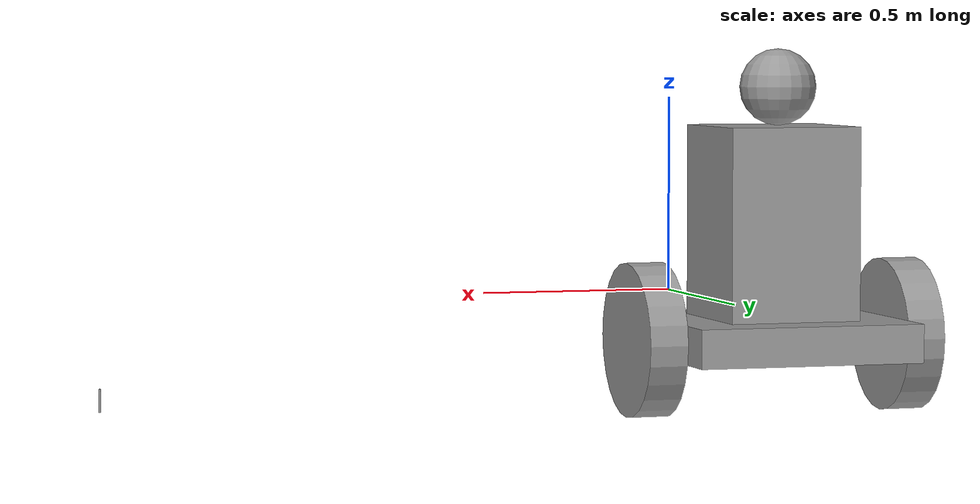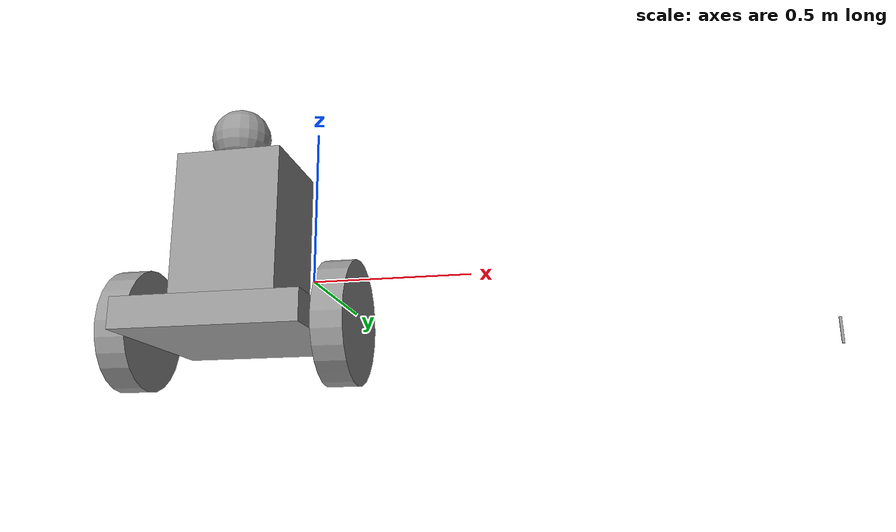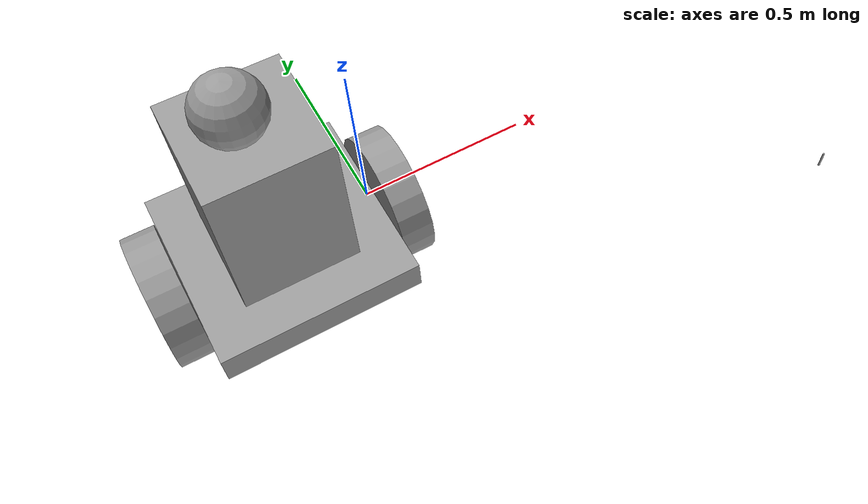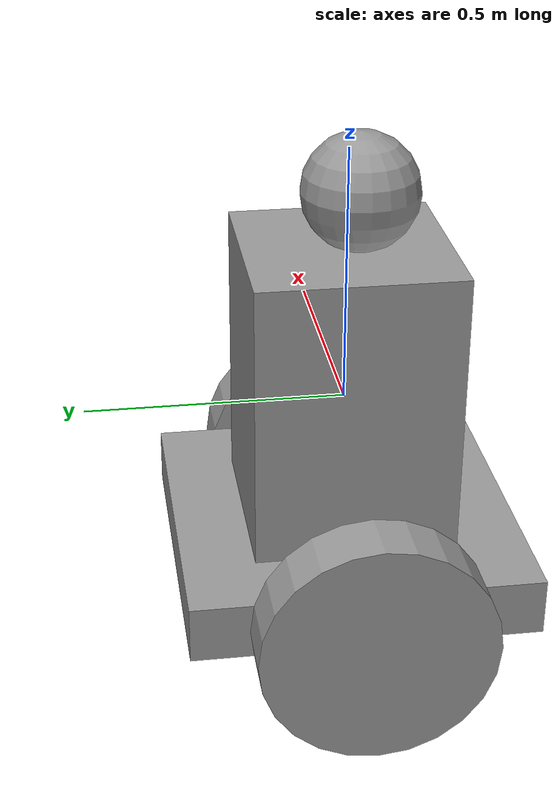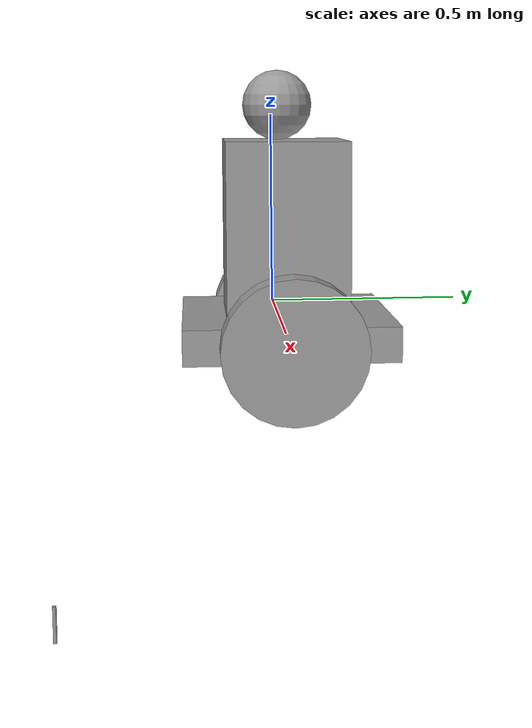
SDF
<?xml version='1.0'?>
<sdf version='1.6'>
  <model name='serviceRobot'>
    <link name='link_1'>
      <pose frame=''>-0.266493 0.05477 -0.125 0 -0 0</pose>
      <inertial>
        <mass>1</mass>
        <inertia>
          <ixx>0.166667</ixx>
          <ixy>0</ixy>
          <ixz>0</ixz>
          <iyy>0.166667</iyy>
          <iyz>0</iyz>
          <izz>0.166667</izz>
        </inertia>
        <pose frame=''>0 0 0 0 -0 0</pose>
      </inertial>
      <gravity>1</gravity>
      <self_collide>0</self_collide>
      <kinematic>0</kinematic>
      <visual name='visual'>
        <pose frame=''>0 0 0 0 -0 0</pose>
        <geometry>
          <box>
            <size>0.6 0.6 0.1</size>
          </box>
        </geometry>
        <material>
          <lighting>1</lighting>
          <script>
            <uri>file://media/materials/scripts/gazebo.material</uri>
            <name>Gazebo/Grey</name>
          </script>
          <shader type='pixel'>
            <normal_map>__default__</normal_map>
          </shader>
          <ambient>0.3 0.3 0.3 1</ambient>
          <diffuse>0.7 0.7 0.7 1</diffuse>
          <specular>0.01 0.01 0.01 1</specular>
          <emissive>0 0 0 1</emissive>
        </material>
        <transparency>0</transparency>
        <cast_shadows>1</cast_shadows>
      </visual>
      <collision name='collision'>
        <laser_retro>0</laser_retro>
        <max_contacts>10</max_contacts>
        <pose frame=''>0 0 0 0 -0 0</pose>
        <geometry>
          <box>
            <size>0.6 0.6 0.1</size>
          </box>
        </geometry>
        <surface>
          <friction>
            <ode>
              <mu>1</mu>
              <mu2>1</mu2>
              <fdir1>0 0 0</fdir1>
              <slip1>0</slip1>
              <slip2>0</slip2>
            </ode>
            <torsional>
              <coefficient>1</coefficient>
              <patch_radius>0</patch_radius>
              <surface_radius>0</surface_radius>
              <use_patch_radius>1</use_patch_radius>
              <ode>
                <slip>0</slip>
              </ode>
            </torsional>
          </friction>
          <bounce>
            <restitution_coefficient>0</restitution_coefficient>
            <threshold>1e+06</threshold>
          </bounce>
          <contact>
            <collide_without_contact>0</collide_without_contact>
            <collide_without_contact_bitmask>1</collide_without_contact_bitmask>
            <collide_bitmask>1</collide_bitmask>
            <ode>
              <soft_cfm>0</soft_cfm>
              <soft_erp>0.2</soft_erp>
              <kp>1e+13</kp>
              <kd>1</kd>
              <max_vel>0.01</max_vel>
              <min_depth>0</min_depth>
            </ode>
            <bullet>
              <split_impulse>1</split_impulse>
              <split_impulse_penetration_threshold>-0.01</split_impulse_penetration_threshold>
              <soft_cfm>0</soft_cfm>
              <soft_erp>0.2</soft_erp>
              <kp>1e+13</kp>
              <kd>1</kd>
            </bullet>
          </contact>
        </surface>
      </collision>
    </link>
    <link name='link_2'>
      <pose frame=''>0.084348 0.05477 -0.125 3.14159 1.56659 3.14159</pose>
      <inertial>
        <mass>1</mass>
        <inertia>
          <ixx>0.145833</ixx>
          <ixy>0</ixy>
          <ixz>0</ixz>
          <iyy>0.145833</iyy>
          <iyz>0</iyz>
          <izz>0.125</izz>
        </inertia>
        <pose frame=''>0 0 0 0 -0 0</pose>
      </inertial>
      <gravity>1</gravity>
      <self_collide>0</self_collide>
      <kinematic>0</kinematic>
      <visual name='visual'>
        <pose frame=''>0 0 0 0 -0 0</pose>
        <geometry>
          <cylinder>
            <radius>0.2</radius>
            <length>0.1</length>
          </cylinder>
        </geometry>
        <material>
          <lighting>1</lighting>
          <script>
            <uri>file://media/materials/scripts/gazebo.material</uri>
            <name>Gazebo/Grey</name>
          </script>
          <shader type='pixel'>
            <normal_map>__default__</normal_map>
          </shader>
          <ambient>0.3 0.3 0.3 1</ambient>
          <diffuse>0.7 0.7 0.7 1</diffuse>
          <specular>0.01 0.01 0.01 1</specular>
          <emissive>0 0 0 1</emissive>
        </material>
        <transparency>0</transparency>
        <cast_shadows>1</cast_shadows>
      </visual>
      <collision name='collision'>
        <laser_retro>0</laser_retro>
        <max_contacts>10</max_contacts>
        <pose frame=''>0 0 0 0 -0 0</pose>
        <geometry>
          <cylinder>
            <radius>0.2</radius>
            <length>0.1</length>
          </cylinder>
        </geometry>
        <surface>
          <friction>
            <ode>
              <mu>1</mu>
              <mu2>1</mu2>
              <fdir1>0 0 0</fdir1>
              <slip1>0</slip1>
              <slip2>0</slip2>
            </ode>
            <torsional>
              <coefficient>1</coefficient>
              <patch_radius>0</patch_radius>
              <surface_radius>0</surface_radius>
              <use_patch_radius>1</use_patch_radius>
              <ode>
                <slip>0</slip>
              </ode>
            </torsional>
          </friction>
          <bounce>
            <restitution_coefficient>0</restitution_coefficient>
            <threshold>1e+06</threshold>
          </bounce>
          <contact>
            <collide_without_contact>0</collide_without_contact>
            <collide_without_contact_bitmask>1</collide_without_contact_bitmask>
            <collide_bitmask>1</collide_bitmask>
            <ode>
              <soft_cfm>0</soft_cfm>
              <soft_erp>0.2</soft_erp>
              <kp>1e+13</kp>
              <kd>1</kd>
              <max_vel>0.01</max_vel>
              <min_depth>0</min_depth>
            </ode>
            <bullet>
              <split_impulse>1</split_impulse>
              <split_impulse_penetration_threshold>-0.01</split_impulse_penetration_threshold>
              <soft_cfm>0</soft_cfm>
              <soft_erp>0.2</soft_erp>
              <kp>1e+13</kp>
              <kd>1</kd>
            </bullet>
          </contact>
        </surface>
      </collision>
    </link>
    <link name='link_2_clone'>
      <pose frame=''>-0.617334 0.05477 -0.125 3.14159 1.56659 3.14159</pose>
      <inertial>
        <mass>1</mass>
        <inertia>
          <ixx>0.145833</ixx>
          <ixy>0</ixy>
          <ixz>0</ixz>
          <iyy>0.145833</iyy>
          <iyz>0</iyz>
          <izz>0.125</izz>
        </inertia>
        <pose frame=''>0 0 0 0 -0 0</pose>
      </inertial>
      <self_collide>0</self_collide>
      <kinematic>0</kinematic>
      <visual name='visual'>
        <pose frame=''>0 0 0 0 -0 0</pose>
        <geometry>
          <cylinder>
            <radius>0.2</radius>
            <length>0.1</length>
          </cylinder>
        </geometry>
        <material>
          <lighting>1</lighting>
          <script>
            <uri>file://media/materials/scripts/gazebo.material</uri>
            <name>Gazebo/Grey</name>
          </script>
          <shader type='pixel'>
            <normal_map>__default__</normal_map>
          </shader>
          <ambient>0.3 0.3 0.3 1</ambient>
          <diffuse>0.7 0.7 0.7 1</diffuse>
          <specular>0.01 0.01 0.01 1</specular>
          <emissive>0 0 0 1</emissive>
        </material>
        <transparency>0</transparency>
        <cast_shadows>1</cast_shadows>
      </visual>
      <collision name='collision'>
        <laser_retro>0</laser_retro>
        <max_contacts>10</max_contacts>
        <pose frame=''>0 0 0 0 -0 0</pose>
        <geometry>
          <cylinder>
            <radius>0.2</radius>
            <length>0.1</length>
          </cylinder>
        </geometry>
        <surface>
          <friction>
            <ode>
              <mu>1</mu>
              <mu2>1</mu2>
              <fdir1>0 0 0</fdir1>
              <slip1>0</slip1>
              <slip2>0</slip2>
            </ode>
            <torsional>
              <coefficient>1</coefficient>
              <patch_radius>0</patch_radius>
              <surface_radius>0</surface_radius>
              <use_patch_radius>1</use_patch_radius>
              <ode>
                <slip>0</slip>
              </ode>
            </torsional>
          </friction>
          <bounce>
            <restitution_coefficient>0</restitution_coefficient>
            <threshold>1e+06</threshold>
          </bounce>
          <contact>
            <collide_without_contact>0</collide_without_contact>
            <collide_without_contact_bitmask>1</collide_without_contact_bitmask>
            <collide_bitmask>1</collide_bitmask>
            <ode>
              <soft_cfm>0</soft_cfm>
              <soft_erp>0.2</soft_erp>
              <kp>1e+13</kp>
              <kd>1</kd>
              <max_vel>0.01</max_vel>
              <min_depth>0</min_depth>
            </ode>
            <bullet>
              <split_impulse>1</split_impulse>
              <split_impulse_penetration_threshold>-0.01</split_impulse_penetration_threshold>
              <soft_cfm>0</soft_cfm>
              <soft_erp>0.2</soft_erp>
              <kp>1e+13</kp>
              <kd>1</kd>
            </bullet>
          </contact>
        </surface>
      </collision>
    </link>
    <link name='link_3'>
      <pose frame=''>-0.266493 0.05477 0.175 0 -0 0</pose>
      <inertial>
        <mass>1</mass>
        <inertia>
          <ixx>0.166667</ixx>
          <ixy>0</ixy>
          <ixz>0</ixz>
          <iyy>0.166667</iyy>
          <iyz>0</iyz>
          <izz>0.166667</izz>
        </inertia>
        <pose frame=''>0 0 0 0 -0 0</pose>
      </inertial>
      <gravity>1</gravity>
      <self_collide>0</self_collide>
      <kinematic>0</kinematic>
      <visual name='visual'>
        <pose frame=''>0 0 0 0 -0 0</pose>
        <geometry>
          <box>
            <size>0.35 0.35 0.5</size>
          </box>
        </geometry>
        <material>
          <lighting>1</lighting>
          <script>
            <uri>file://media/materials/scripts/gazebo.material</uri>
            <name>Gazebo/Grey</name>
          </script>
          <shader type='pixel'>
            <normal_map>__default__</normal_map>
          </shader>
          <ambient>0.3 0.3 0.3 1</ambient>
          <diffuse>0.7 0.7 0.7 1</diffuse>
          <specular>0.01 0.01 0.01 1</specular>
          <emissive>0 0 0 1</emissive>
        </material>
        <transparency>0</transparency>
        <cast_shadows>1</cast_shadows>
      </visual>
      <collision name='collision'>
        <laser_retro>0</laser_retro>
        <max_contacts>10</max_contacts>
        <pose frame=''>0 0 0 0 -0 0</pose>
        <geometry>
          <box>
            <size>0.35 0.35 0.5</size>
          </box>
        </geometry>
        <surface>
          <friction>
            <ode>
              <mu>1</mu>
              <mu2>1</mu2>
              <fdir1>0 0 0</fdir1>
              <slip1>0</slip1>
              <slip2>0</slip2>
            </ode>
            <torsional>
              <coefficient>1</coefficient>
              <patch_radius>0</patch_radius>
              <surface_radius>0</surface_radius>
              <use_patch_radius>1</use_patch_radius>
              <ode>
                <slip>0</slip>
              </ode>
            </torsional>
          </friction>
          <bounce>
            <restitution_coefficient>0</restitution_coefficient>
            <threshold>1e+06</threshold>
          </bounce>
          <contact>
            <collide_without_contact>0</collide_without_contact>
            <collide_without_contact_bitmask>1</collide_without_contact_bitmask>
            <collide_bitmask>1</collide_bitmask>
            <ode>
              <soft_cfm>0</soft_cfm>
              <soft_erp>0.2</soft_erp>
              <kp>1e+13</kp>
              <kd>1</kd>
              <max_vel>0.01</max_vel>
              <min_depth>0</min_depth>
            </ode>
            <bullet>
              <split_impulse>1</split_impulse>
              <split_impulse_penetration_threshold>-0.01</split_impulse_penetration_threshold>
              <soft_cfm>0</soft_cfm>
              <soft_erp>0.2</soft_erp>
              <kp>1e+13</kp>
              <kd>1</kd>
            </bullet>
          </contact>
        </surface>
      </collision>
    </link>
    <link name='link_4'>
      <pose frame=''>-0.286493 0.03477 0.525 0 -0 0</pose>
      <inertial>
        <mass>1</mass>
        <inertia>
          <ixx>0.1</ixx>
          <ixy>0</ixy>
          <ixz>0</ixz>
          <iyy>0.1</iyy>
          <iyz>0</iyz>
          <izz>0.1</izz>
        </inertia>
        <pose frame=''>0 0 0 0 -0 0</pose>
      </inertial>
      <gravity>1</gravity>
      <self_collide>0</self_collide>
      <kinematic>0</kinematic>
      <visual name='visual'>
        <pose frame=''>0 0 0 0 -0 0</pose>
        <geometry>
          <sphere>
            <radius>0.1</radius>
          </sphere>
        </geometry>
        <material>
          <lighting>1</lighting>
          <script>
            <uri>file://media/materials/scripts/gazebo.material</uri>
            <name>Gazebo/Grey</name>
          </script>
          <shader type='pixel'>
            <normal_map>__default__</normal_map>
          </shader>
          <ambient>0.3 0.3 0.3 1</ambient>
          <diffuse>0.7 0.7 0.7 1</diffuse>
          <specular>0.01 0.01 0.01 1</specular>
          <emissive>0 0 0 1</emissive>
        </material>
        <transparency>0</transparency>
        <cast_shadows>1</cast_shadows>
      </visual>
      <collision name='collision'>
        <laser_retro>0</laser_retro>
        <max_contacts>10</max_contacts>
        <pose frame=''>0 0 0 0 -0 0</pose>
        <geometry>
          <sphere>
            <radius>0.1</radius>
          </sphere>
        </geometry>
        <surface>
          <friction>
            <ode>
              <mu>1</mu>
              <mu2>1</mu2>
              <fdir1>0 0 0</fdir1>
              <slip1>0</slip1>
              <slip2>0</slip2>
            </ode>
            <torsional>
              <coefficient>1</coefficient>
              <patch_radius>0</patch_radius>
              <surface_radius>0</surface_radius>
              <use_patch_radius>1</use_patch_radius>
              <ode>
                <slip>0</slip>
              </ode>
            </torsional>
          </friction>
          <bounce>
            <restitution_coefficient>0</restitution_coefficient>
            <threshold>1e+06</threshold>
          </bounce>
          <contact>
            <collide_without_contact>0</collide_without_contact>
            <collide_without_contact_bitmask>1</collide_without_contact_bitmask>
            <collide_bitmask>1</collide_bitmask>
            <ode>
              <soft_cfm>0</soft_cfm>
              <soft_erp>0.2</soft_erp>
              <kp>1e+13</kp>
              <kd>1</kd>
              <max_vel>0.01</max_vel>
              <min_depth>0</min_depth>
            </ode>
            <bullet>
              <split_impulse>1</split_impulse>
              <split_impulse_penetration_threshold>-0.01</split_impulse_penetration_threshold>
              <soft_cfm>0</soft_cfm>
              <soft_erp>0.2</soft_erp>
              <kp>1e+13</kp>
              <kd>1</kd>
            </bullet>
          </contact>
        </surface>
      </collision>
    </link>
    <model name='metal_peg'>
      <link name='link'>
        <pose frame=''>0 0 0.031 0 -0 0</pose>
        <inertial>
          <mass>0.0121</mass>
          <inertia>
            <ixx>3.90898e-06</ixx>
            <ixy>0</ixy>
            <ixz>0</ixz>
            <iyy>3.90898e-06</iyy>
            <iyz>0</iyz>
            <izz>6.58845e-08</izz>
          </inertia>
        </inertial>
        <collision name='collision'>
          <geometry>
            <cylinder>
              <radius>0.0033</radius>
              <length>0.062</length>
            </cylinder>
          </geometry>
          <surface>
            <contact>
              <poissons_ratio>0.305</poissons_ratio>
              <elastic_modulus>2e+11</elastic_modulus>
              <ode>
                <kp>100000</kp>
                <kd>100</kd>
                <max_vel>100</max_vel>
                <min_depth>0.001</min_depth>
              </ode>
            </contact>
            <friction>
              <torsional>
                <coefficient>1</coefficient>
                <use_patch_radius>0</use_patch_radius>
                <surface_radius>0.01</surface_radius>
              </torsional>
            </friction>
          </surface>
        </collision>
        <visual name='visual'>
          <geometry>
            <cylinder>
              <radius>0.0033</radius>
              <length>0.062</length>
            </cylinder>
          </geometry>
          <material>
            <script>
              <uri>file://media/materials/scripts/gazebo.material</uri>
              <name>Gazebo/Grey</name>
            </script>
          </material>
        </visual>
      </link>
      <pose frame=''>1.41901 -0.439429 -0.325 0 -0 0</pose>
    </model>
    <joint name='link_1_JOINT_0' type='revolute'>
      <parent>link_1</parent>
      <child>link_2_clone</child>
      <pose frame=''>0 0 0 0 -0 0</pose>
      <axis>
        <xyz>0 0 1</xyz>
        <use_parent_model_frame>0</use_parent_model_frame>
        <limit>
          <lower>-1.79769e+308</lower>
          <upper>1.79769e+308</upper>
          <effort>-1</effort>
          <velocity>-1</velocity>
        </limit>
        <dynamics>
          <spring_reference>0</spring_reference>
          <spring_stiffness>0</spring_stiffness>
          <damping>0</damping>
        </dynamics>
      </axis>
      <physics>
        <ode>
          <limit>
            <cfm>0</cfm>
            <erp>0.2</erp>
          </limit>
          <suspension>
            <cfm>0</cfm>
            <erp>0.2</erp>
          </suspension>
        </ode>
      </physics>
    </joint>
    <joint name='link_1_JOINT_1' type='revolute'>
      <parent>link_1</parent>
      <child>link_2</child>
      <pose frame=''>0 0 0 0 -0 0</pose>
      <axis>
        <xyz>0 0 1</xyz>
        <use_parent_model_frame>0</use_parent_model_frame>
        <limit>
          <lower>-1.79769e+308</lower>
          <upper>1.79769e+308</upper>
          <effort>-1</effort>
          <velocity>-1</velocity>
        </limit>
        <dynamics>
          <spring_reference>0</spring_reference>
          <spring_stiffness>0</spring_stiffness>
          <damping>0</damping>
        </dynamics>
      </axis>
      <physics>
        <ode>
          <limit>
            <cfm>0</cfm>
            <erp>0.2</erp>
          </limit>
          <suspension>
            <cfm>0</cfm>
            <erp>0.2</erp>
          </suspension>
        </ode>
      </physics>
    </joint>
    <joint name='link_1_JOINT_2' type='fixed'>
      <parent>link_1</parent>
      <child>link_3</child>
      <pose frame=''>0 0 0 0 -0 0</pose>
      <physics>
        <ode>
          <limit>
            <cfm>0</cfm>
            <erp>0.2</erp>
          </limit>
          <suspension>
            <cfm>0</cfm>
            <erp>0.2</erp>
          </suspension>
        </ode>
      </physics>
    </joint>
    <joint name='link_3_JOINT_3' type='fixed'>
      <parent>link_3</parent>
      <child>link_4</child>
      <pose frame=''>0 0 0 0 -0 0</pose>
      <physics>
        <ode>
          <limit>
            <cfm>0</cfm>
            <erp>0.2</erp>
          </limit>
          <suspension>
            <cfm>0</cfm>
            <erp>0.2</erp>
          </suspension>
        </ode>
      </physics>
    </joint>
    <static>0</static>
    <allow_auto_disable>1</allow_auto_disable>
  </model>
</sdf>
